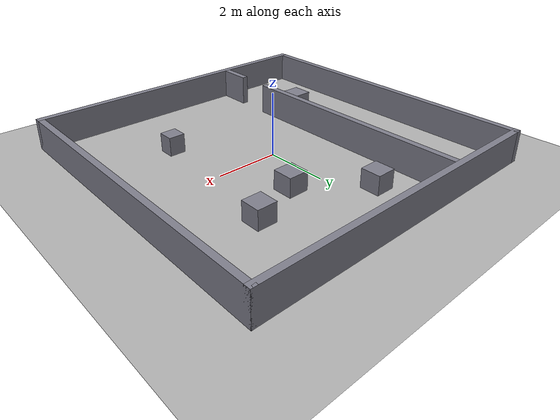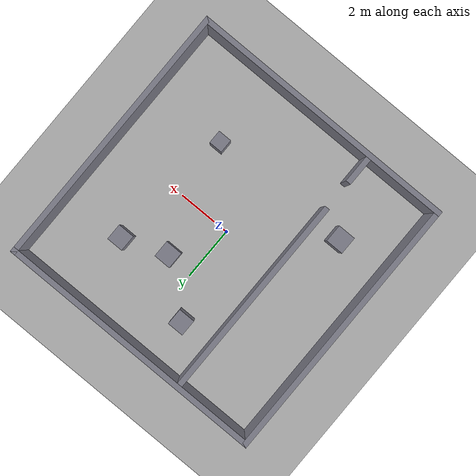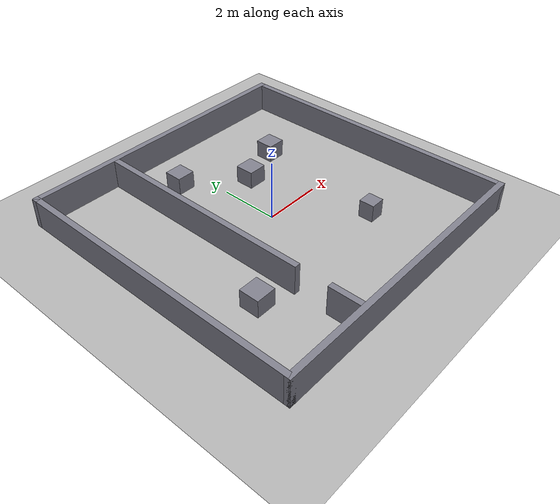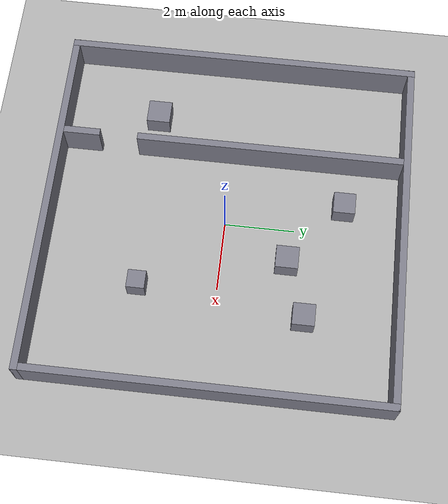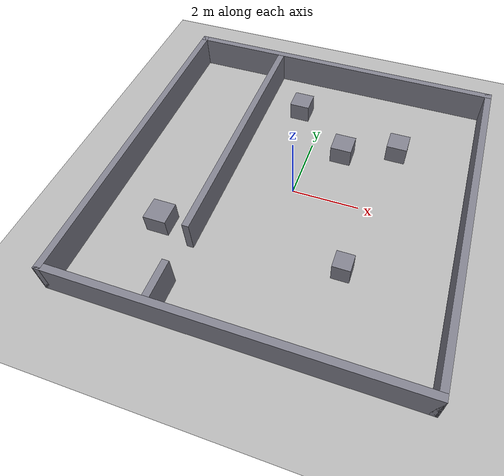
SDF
<?xml version="1.0"?>
<sdf version="1.10">
  <world name="scenario_4">
    <physics name="fast" type="ignored">
      <max_step_size>0.005</max_step_size>
      <real_time_factor>1.0</real_time_factor>
      <real_time_update_rate>200</real_time_update_rate>
    </physics>
    <plugin filename="gz-sim-physics-system" name="gz::sim::systems::Physics"/>
    <plugin filename="gz-sim-user-commands-system" name="gz::sim::systems::UserCommands"/>
    <plugin filename="gz-sim-scene-broadcaster-system" name="gz::sim::systems::SceneBroadcaster"/>
    <plugin filename="gz-sim-sensors-system" name="gz::sim::systems::Sensors">
      <render_engine>ogre2</render_engine>
    </plugin>
    <light type="directional" name="sun">
      <cast_shadows>false</cast_shadows>
      <pose>0 0 10 0 0 0</pose>
      <diffuse>0.9 0.9 0.9 1</diffuse>
      <direction>-0.5 0.2 -0.9</direction>
    </light>
    <model name="ground_plane">
      <static>true</static>
      <link name="link">
        <collision name="c"><geometry><plane><normal>0 0 1</normal><size>20 20</size></plane></geometry></collision>
        <visual name="v"><geometry><plane><normal>0 0 1</normal><size>20 20</size></plane></geometry>
          <material><ambient>0.7 0.7 0.7 1</ambient><diffuse>0.7 0.7 0.7 1</diffuse></material></visual>
      </link>
    </model>
    <model name="box_0">
      <static>true</static>
      <pose>0.0 5.0 0.5 0 0 0</pose>
      <link name="link">
        <collision name="c"><geometry><box><size>10.2 0.2 1.0</size></box></geometry></collision>
        <visual name="v"><geometry><box><size>10.2 0.2 1.0</size></box></geometry>
          <material><ambient>0.5 0.5 0.55 1</ambient><diffuse>0.5 0.5 0.55 1</diffuse></material></visual>
      </link>
    </model>
    <model name="box_1">
      <static>true</static>
      <pose>0.0 -5.0 0.5 0 0 0</pose>
      <link name="link">
        <collision name="c"><geometry><box><size>10.2 0.2 1.0</size></box></geometry></collision>
        <visual name="v"><geometry><box><size>10.2 0.2 1.0</size></box></geometry>
          <material><ambient>0.5 0.5 0.55 1</ambient><diffuse>0.5 0.5 0.55 1</diffuse></material></visual>
      </link>
    </model>
    <model name="box_2">
      <static>true</static>
      <pose>5.0 0.0 0.5 0 0 0</pose>
      <link name="link">
        <collision name="c"><geometry><box><size>0.2 10.2 1.0</size></box></geometry></collision>
        <visual name="v"><geometry><box><size>0.2 10.2 1.0</size></box></geometry>
          <material><ambient>0.5 0.5 0.55 1</ambient><diffuse>0.5 0.5 0.55 1</diffuse></material></visual>
      </link>
    </model>
    <model name="box_3">
      <static>true</static>
      <pose>-5.0 0.0 0.5 0 0 0</pose>
      <link name="link">
        <collision name="c"><geometry><box><size>0.2 10.2 1.0</size></box></geometry></collision>
        <visual name="v"><geometry><box><size>0.2 10.2 1.0</size></box></geometry>
          <material><ambient>0.5 0.5 0.55 1</ambient><diffuse>0.5 0.5 0.55 1</diffuse></material></visual>
      </link>
    </model>
    <model name="box_4">
      <static>true</static>
      <pose>-2.07 -4.374077485460763 0.5 0 0 0</pose>
      <link name="link">
        <collision name="c"><geometry><box><size>0.2 1.0518450290784749 1.0</size></box></geometry></collision>
        <visual name="v"><geometry><box><size>0.2 1.0518450290784749 1.0</size></box></geometry>
          <material><ambient>0.5 0.5 0.55 1</ambient><diffuse>0.5 0.5 0.55 1</diffuse></material></visual>
      </link>
    </model>
    <model name="box_5">
      <static>true</static>
      <pose>-2.07 1.0709225145392374 0.5 0 0 0</pose>
      <link name="link">
        <collision name="c"><geometry><box><size>0.2 7.658154970921526 1.0</size></box></geometry></collision>
        <visual name="v"><geometry><box><size>0.2 7.658154970921526 1.0</size></box></geometry>
          <material><ambient>0.5 0.5 0.55 1</ambient><diffuse>0.5 0.5 0.55 1</diffuse></material></visual>
      </link>
    </model>
    <model name="box_6">
      <static>true</static>
      <pose>-0.79 3.34 0.3 0 0 0</pose>
      <link name="link">
        <collision name="c"><geometry><box><size>0.62 0.62 0.6</size></box></geometry></collision>
        <visual name="v"><geometry><box><size>0.62 0.62 0.6</size></box></geometry>
          <material><ambient>0.5 0.5 0.55 1</ambient><diffuse>0.5 0.5 0.55 1</diffuse></material></visual>
      </link>
    </model>
    <model name="box_7">
      <static>true</static>
      <pose>2.12 -2.22 0.3 0 0 0</pose>
      <link name="link">
        <collision name="c"><geometry><box><size>0.51 0.51 0.6</size></box></geometry></collision>
        <visual name="v"><geometry><box><size>0.51 0.51 0.6</size></box></geometry>
          <material><ambient>0.5 0.5 0.55 1</ambient><diffuse>0.5 0.5 0.55 1</diffuse></material></visual>
      </link>
    </model>
    <model name="box_8">
      <static>true</static>
      <pose>-3.15 -2.28 0.3 0 0 0</pose>
      <link name="link">
        <collision name="c"><geometry><box><size>0.67 0.67 0.6</size></box></geometry></collision>
        <visual name="v"><geometry><box><size>0.67 0.67 0.6</size></box></geometry>
          <material><ambient>0.5 0.5 0.55 1</ambient><diffuse>0.5 0.5 0.55 1</diffuse></material></visual>
      </link>
    </model>
    <model name="box_9">
      <static>true</static>
      <pose>2.63 2.45 0.3 0 0 0</pose>
      <link name="link">
        <collision name="c"><geometry><box><size>0.62 0.62 0.6</size></box></geometry></collision>
        <visual name="v"><geometry><box><size>0.62 0.62 0.6</size></box></geometry>
          <material><ambient>0.5 0.5 0.55 1</ambient><diffuse>0.5 0.5 0.55 1</diffuse></material></visual>
      </link>
    </model>
    <model name="box_10">
      <static>true</static>
      <pose>1.02 1.86 0.3 0 0 0</pose>
      <link name="link">
        <collision name="c"><geometry><box><size>0.64 0.64 0.6</size></box></geometry></collision>
        <visual name="v"><geometry><box><size>0.64 0.64 0.6</size></box></geometry>
          <material><ambient>0.5 0.5 0.55 1</ambient><diffuse>0.5 0.5 0.55 1</diffuse></material></visual>
      </link>
    </model>
  </world>
</sdf>
